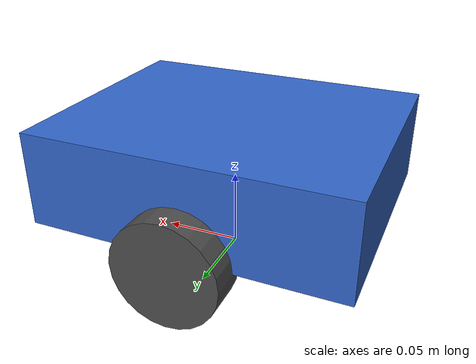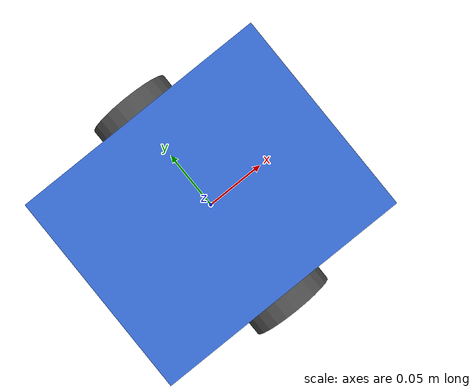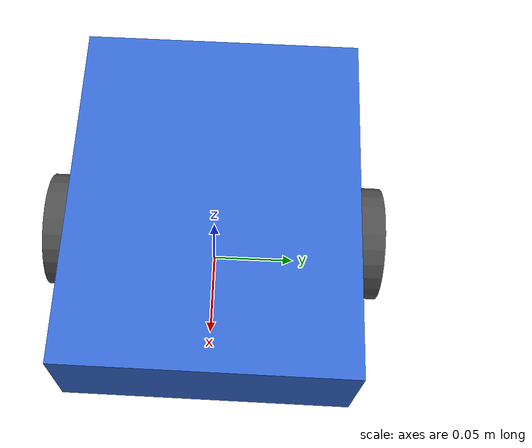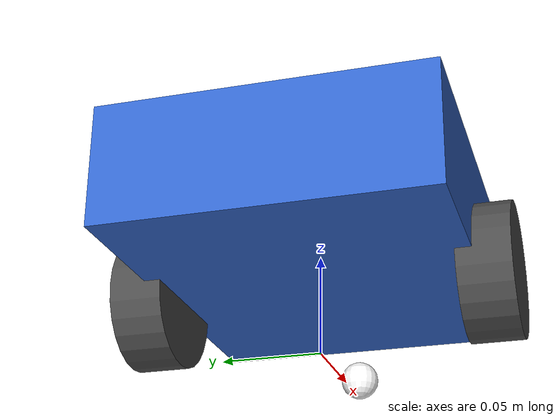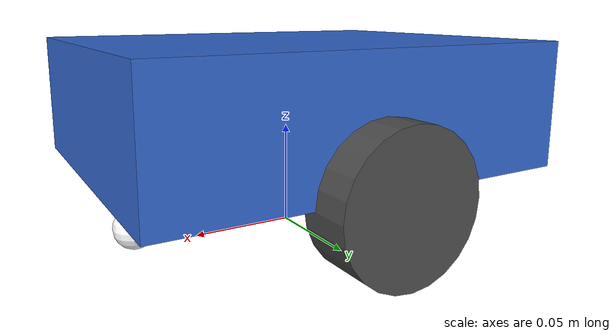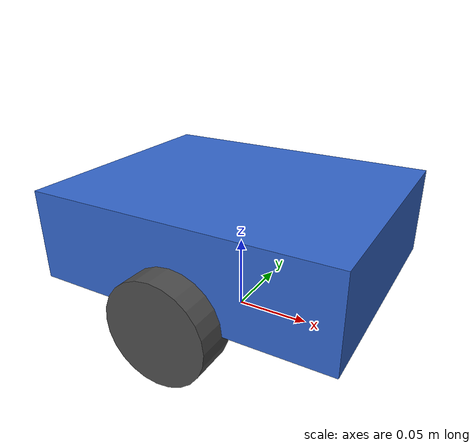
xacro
<?xml version="1.0"?>
<robot xmlns:xacro="http://www.ros.org/wiki/xacro" name="soki_robo">

  <!-- ============ Properties ============ -->
  <xacro:property name="wheel_radius"     value="0.0335"/>
  <xacro:property name="wheel_separation" value="0.17"/>   <!-- PLACEHOLDER: 要実測 -->
  <xacro:property name="wheel_width"      value="0.026"/>

  <xacro:property name="base_length" value="0.20"/>
  <xacro:property name="base_width"  value="0.16"/>
  <xacro:property name="base_height" value="0.06"/>

  <xacro:property name="caster_radius" value="0.01"/>

  <!-- ============ Materials ============ -->
  <material name="white">
    <color rgba="1.0 1.0 1.0 1.0"/>
  </material>
  <material name="dark_grey">
    <color rgba="0.3 0.3 0.3 1.0"/>
  </material>
  <material name="blue">
    <color rgba="0.2 0.4 0.8 1.0"/>
  </material>

  <!-- ============ base_footprint (ground plane) ============ -->
  <link name="base_footprint"/>

  <joint name="base_joint" type="fixed">
    <parent link="base_footprint"/>
    <child link="base_link"/>
    <origin xyz="0 0 ${wheel_radius}" rpy="0 0 0"/>
  </joint>

  <!-- ============ base_link ============ -->
  <link name="base_link">
    <visual>
      <geometry>
        <box size="${base_length} ${base_width} ${base_height}"/>
      </geometry>
      <origin xyz="0 0 ${base_height/2}" rpy="0 0 0"/>
      <material name="blue"/>
    </visual>
    <collision>
      <geometry>
        <box size="${base_length} ${base_width} ${base_height}"/>
      </geometry>
      <origin xyz="0 0 ${base_height/2}" rpy="0 0 0"/>
    </collision>
    <inertial>
      <mass value="1.0"/>
      <origin xyz="0 0 ${base_height/2}" rpy="0 0 0"/>
      <inertia ixx="0.001" ixy="0" ixz="0"
               iyy="0.001" iyz="0"
               izz="0.001"/>
    </inertial>
  </link>

  <!-- ============ Wheel macro ============ -->
  <xacro:macro name="wheel" params="prefix y_reflect">
    <link name="${prefix}_wheel_link">
      <visual>
        <geometry>
          <cylinder radius="${wheel_radius}" length="${wheel_width}"/>
        </geometry>
        <material name="dark_grey"/>
      </visual>
      <collision>
        <geometry>
          <cylinder radius="${wheel_radius}" length="${wheel_width}"/>
        </geometry>
      </collision>
      <inertial>
        <mass value="0.1"/>
        <inertia ixx="0.0001" ixy="0" ixz="0"
                 iyy="0.0001" iyz="0"
                 izz="0.0001"/>
      </inertial>
    </link>

    <joint name="${prefix}_wheel_joint" type="continuous">
      <parent link="base_link"/>
      <child link="${prefix}_wheel_link"/>
      <origin xyz="0 ${y_reflect * wheel_separation/2} 0" rpy="${-pi/2} 0 0"/>
      <axis xyz="0 0 1"/>
    </joint>
  </xacro:macro>

  <xacro:wheel prefix="left"  y_reflect="1"/>
  <xacro:wheel prefix="right" y_reflect="-1"/>

  <!-- ============ Caster (front) ============ -->
  <link name="caster_link">
    <visual>
      <geometry>
        <sphere radius="${caster_radius}"/>
      </geometry>
      <material name="white"/>
    </visual>
    <collision>
      <geometry>
        <sphere radius="${caster_radius}"/>
      </geometry>
    </collision>
    <inertial>
      <mass value="0.02"/>
      <inertia ixx="0.00001" ixy="0" ixz="0"
               iyy="0.00001" iyz="0"
               izz="0.00001"/>
    </inertial>
  </link>

  <joint name="caster_joint" type="fixed">
    <parent link="base_link"/>
    <child link="caster_link"/>
    <origin xyz="${base_length/2 - 0.02} 0 ${-(wheel_radius - caster_radius)}" rpy="0 0 0"/>
  </joint>

  <!-- ============ IMU link ============ -->
  <!-- PLACEHOLDER: 位置・姿勢は実機計測で更新 -->
  <link name="imu_link"/>

  <joint name="imu_joint" type="fixed">
    <parent link="base_link"/>
    <child link="imu_link"/>
    <origin xyz="0 0 ${base_height}" rpy="0 0 0"/>
  </joint>

  <!-- ============ LiDAR link ============ -->
  <!-- PLACEHOLDER: 位置・姿勢は実機計測で更新 -->
  <link name="laser_link"/>

  <joint name="laser_joint" type="fixed">
    <parent link="base_link"/>
    <child link="laser_link"/>
    <origin xyz="0 0 ${base_height + 0.04}" rpy="0 0 ${pi}"/>
  </joint>

  <!-- ============ ros2_control ============ -->
  <xacro:include filename="$(find soki_description)/urdf/ros2_control.xacro"/>

</robot>
